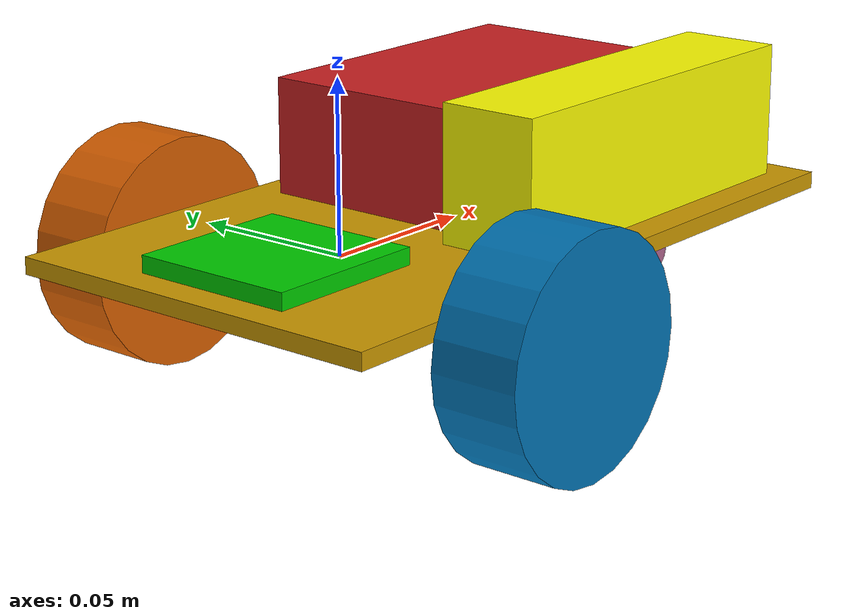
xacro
<?xml version="1.0"?>
<robot name="dr_robotas" xmlns:xacro="http://www.ros.org/wiki/xacro">

  <xacro:include filename="C:\ROS_ws\src\dr_robotas\model\colors.xacro" />
  <xacro:include filename="C:\ROS_ws\src\dr_robotas\model\macros.xacro" />
  <xacro:include filename="C:\ROS_ws\src\dr_robotas\model\param.xacro" />

  <!-- links -->
  <link name="base_link">
    <visual name="base_link_visual">
      <geometry>
          <box size="${total_length} ${total_width} ${base_z}" />
      </geometry>
      <origin xyz="${(total_length-pcb_x)/2+pcb_x_offset-base_padding} 0 0"/>
      <material name="orange"/>
    </visual>
    <collision name="base_link_collision">
      <geometry>
          <box size="${total_length} ${total_width} ${base_z}" />
      </geometry>
      <origin xyz="${(total_length-pcb_x)/2+pcb_x_offset-base_padding} 0 0"/>
    </collision>
  </link>

  <link name="pcb">
    <visual>
      <geometry>
        <box size="${pcb_x} ${pcb_y} ${pcb_z}" />
      </geometry>
      <material name="green"/>
    </visual>
  </link>

  <xacro:battery_and_rpy name="link_right_wheel" x="${gap_pcb_bat+(batt_x+pcb_x)/2+pcb_x_offset}" y="${0}" z="${(batt_z+base_z)/2}"/>
  <xacro:wheel_link name="right_wheel_link"/>
  <xacro:wheel_link name="left_wheel_link"/>

  <link name="caster_front_link">
    <visual name='caster_visual'>
        <geometry>
            <sphere radius="${caster_wheel_r}"/>
        </geometry>
    </visual>
    <collision name='caster_collision'>
        <geometry>
            <sphere radius="${caster_wheel_r}"/>
        </geometry>
        <surface>
            <friction>
                <ode>
                    <mu>0</mu>
                    <mu2>0</mu2>
                    <slip1>1.0</slip1>
                    <slip2>1.0</slip2>
                </ode>
            </friction>
        </surface>
    </collision>
  </link>

  <!-- joints -->
  <joint name="base_to_caster" type="fixed">
    <parent link="base_link"/>
    <child link="caster_front_link"/>
    <origin xyz="${(total_length-pcb_x)+pcb_x_offset-base_padding} 0 -${caster_wheel_r+pcb_z/2}"/>
  </joint>

  <joint name="base_to_pcb" type="fixed">
    <parent link="base_link"/>
    <child link="pcb"/>
    <origin xyz="${pcb_x_offset} 0 ${pcb_z/2+base_z/2}"/>
  </joint>

  <joint name="base_to_rwheel" type="continuous">
    <parent link="base_link"/>
    <child link="right_wheel_link"/>
    <origin xyz="0 ${-(wheel_w+total_width)/2} -${motor_r+pcb_z/2}"/>
    <limit effort="10000" velocity="1000"/>
    <joint_properties damping="1.0" friction="1.0"/>
  </joint>

  <joint name="base_to_lwheel" type="continuous">
    <parent link="base_link"/>
    <child link="left_wheel_link"/>
    <origin xyz="0 ${(wheel_w+total_width)/2} -${motor_r+pcb_z/2}"/>
    <limit effort="10000" velocity="1000"/>
    <joint_properties damping="1.0" friction="1.0"/>
  </joint>

</robot>

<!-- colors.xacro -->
<robot>
    <material name="black">
        <color rgba="0.0 0.0 0.0 1.0"/>
    </material>
    <material name="blue">
        <color rgba="0.203125 0.23828125 0.28515625 1.0"/>
    </material>
    <material name="green">
        <color rgba="0.0 0.8 0.0 1.0"/>
    </material>
    <material name="grey">
        <color rgba="0.2 0.2 0.2 1.0"/>
    </material>
    <material name="orange">
        <color rgba="0.8 0.6 0 1.0"/>
    </material>
    <material name="brown">
        <color rgba="0.870588235294 0.811764705882 0.764705882353 1.0"/>
    </material>
    <material name="red">
        <color rgba="0.80078125 0.12890625 0.1328125 1.0"/>
    </material>
    <material name="white">
        <color rgba="1.0 1.0 1.0 1.0"/>
    </material>
    <material name="yellow">
        <color rgba="1.0 1.0 0 1.0"/>
    </material>
</robot>

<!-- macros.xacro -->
<robot xmlns:xacro="http://www.ros.org/wiki/xacro">
  	<xacro:include filename="C:\ROS_ws\src\dr_robotas\model\colors.xacro" />
  	<xacro:include filename="C:\ROS_ws\src\dr_robotas\model\param.xacro" />

    <xacro:macro name="box_inertia" params="m x y z">
        <inertia ixx="${m*(y*y+z*z)/12}" ixy = "0" ixz = "0" iyy="${m*(x*x+z*z)/12}" iyz = "0" izz="${m*(x*x+z*z)/12}" />
    </xacro:macro>

    <xacro:macro name="cylinder_inertia" params="m r h">
        <inertia ixx="${m*(3*r*r+h*h)/12}" ixy = "0" ixz = "0" iyy="${m*(3*r*r+h*h)/12}" iyz = "0" izz="${m*r*r/2}" />
    </xacro:macro>

    <macro name="wheel_link" params="name">
        <link name="${name}">
            <inertial>
                <mass value="${wheel_m}"/>
                <origin rpy="0 1.5707 1.5707" xyz="0 0 0"/>
            	<cylinder_inertia m="${wheel_m}" r="${wheel_r}" h="${wheel_w}"/>
            </inertial>
            <collision name="${name}_collision">
                <origin rpy="0 1.5707 1.5707" xyz="0 0 0"/>
                <geometry>
                    <cylinder length="${wheel_m}" radius="${wheel_r}"/>
                </geometry>
            </collision>
            <visual name="${name}_visual">
                <origin rpy="0 1.5707 1.5707" xyz="0 0 0"/>
                <geometry>
                    <cylinder length="${wheel_m}" radius="${wheel_r}"/>
                </geometry>
            </visual>
        </link>
    </macro>

	<macro name="battery_and_rpy" params="name x y z">
		<link name="${name}_rpy">
			<visual>
				<geometry>
					<box size="${rpy_x} ${rpy_y} ${rpy_z}" />
				</geometry>
				<material name="red"/>
			</visual>
		</link>

		<link name="${name}_batt">
			<visual>
				<geometry>
					<box size="${batt_x} ${batt_y} ${batt_z}" />
				</geometry>
				<material name="yellow"/>
			</visual>
		</link>

		<joint name="batt_to_rpy" type="fixed">
			<parent link="${name}_batt"/>
			<child link="${name}_rpy"/>
			<origin xyz="0 ${(rpy_y+batt_y)/2} ${(-batt_z+rpy_z)/2}"/>
		</joint>

		<joint name="base_to_batt" type="fixed">
			<parent link="base_link"/>
			<child link="${name}_batt"/>
			<origin xyz="${x} ${y+batt_y/2-(batt_y+rpy_y)/2} ${z}"/>
		</joint>
	</macro>

</robot>

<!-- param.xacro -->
<robot xmlns:xacro="http://www.ros.org/wiki/xacro">

    <xacro:property name="wheel_r" value="0.034" />
    <xacro:property name="wheel_w" value="0.026" />
    <xacro:property name="wheel_m" value="0.026" />

	<xacro:property name="rpy_x" value="0.1" />
	<xacro:property name="rpy_y" value="0.07" />
	<xacro:property name="rpy_z" value="0.035" />

	<xacro:property name="batt_x" value="0.12" />
	<xacro:property name="batt_y" value="0.03" />
	<xacro:property name="batt_z" value="0.04" />

    <xacro:property name="base_z" value="0.005" />

    <xacro:property name="pcb_x" value="0.05" />
    <xacro:property name="pcb_x_offset" value="-0.025" />
    <xacro:property name="pcb_y" value="0.05" />
    <xacro:property name="pcb_z" value="0.005" />

    <xacro:property name="gap_pcb_bat" value="0.02" />
    <xacro:property name="base_padding" value="0.01" />

    <xacro:property name="motor_r" value="0.00775" />

    <xacro:property name="caster_wheel_r" value="${(motor_r+wheel_r)/2}" />

    <xacro:property name="total_length" value="${batt_x+pcb_x+gap_pcb_bat+base_padding*2}" />
    <xacro:property name="total_width" value="${batt_y+rpy_y+base_padding*2}" />

</robot>
